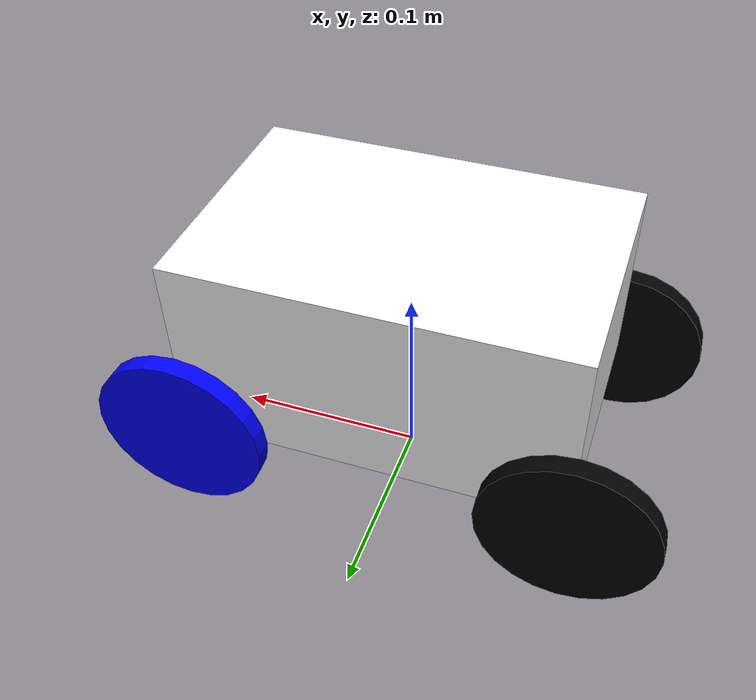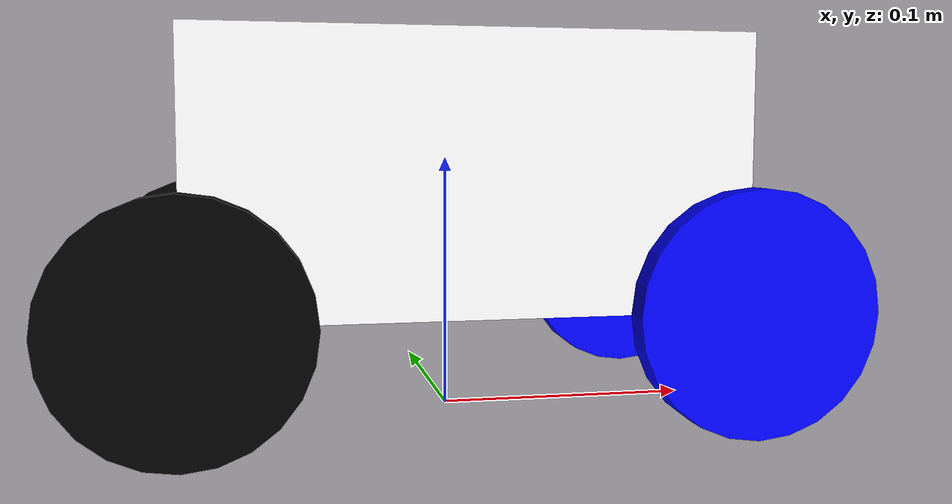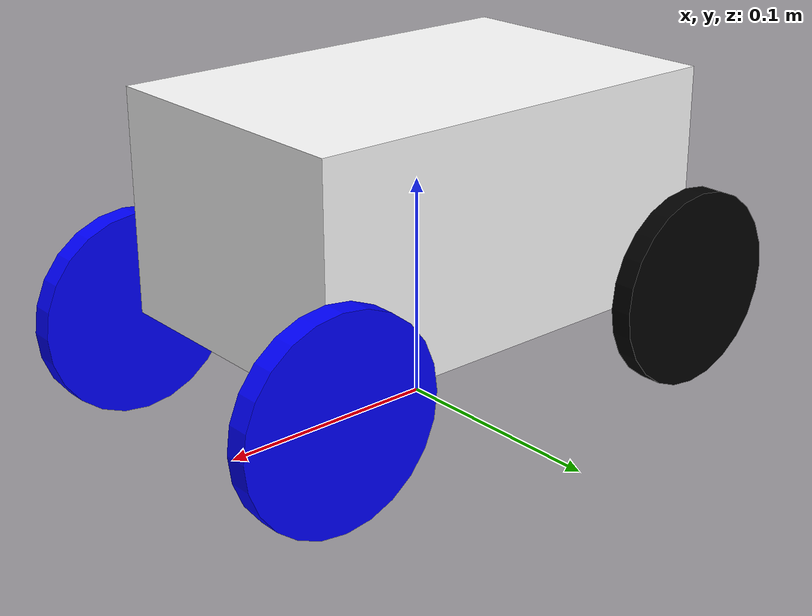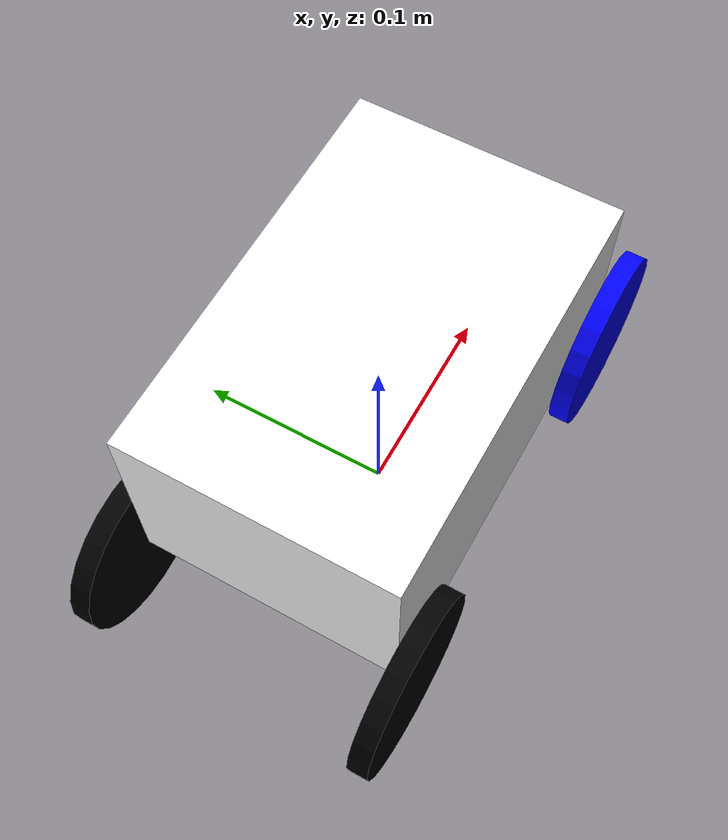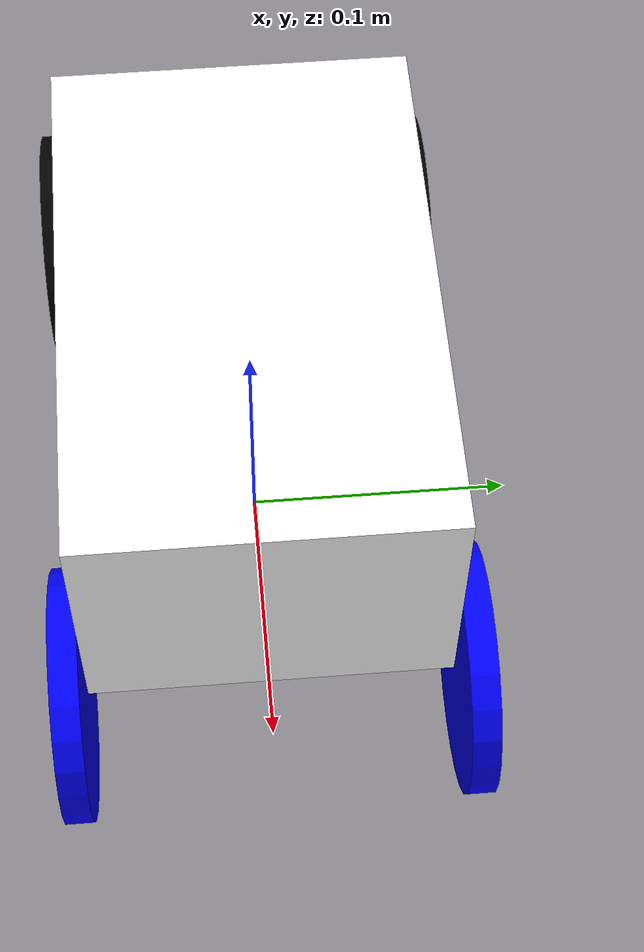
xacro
<?xml version="1.0"?>
<robot xmlns:xacro="http://www.ros.org/wiki/xacro" name="fake-limo">

    <!-- Import the inertial macros -->
    <xacro:include filename="inertial_macros.xacro"/>

    <!-- COLOR NAME  -->
    <material name="white">
        <color rgba="1 1 1 1" />
    </material>
    <material name="black">
        <color rgba="0 0 0 1"/>
    </material>
     <material name="blue">
        <color rgba="0 0 1 1"/>
    </material>

    <!-- base link -->
    <link name="base_link"/>

    <!-- chassis link -->
    <joint name="chassis_joint" type="fixed">
        <origin xyz="0.0 0.0 0.095" rpy="0.0 0.0 1.57"/>
        <parent link="base_link"/>
        <child link="chassis"/>
    </joint>

    <link name="chassis">
        <visual name="">
            <origin xyz="0.0 0.0 0.0" rpy="0.0 0.0 0.0"/>
            <geometry>
                <box size="0.13 0.20 0.1"/>
            </geometry>
            <material name="white"/>
        </visual>
        <collision>
            <origin xyz="0.0 0.0 0.0" rpy="0.0 0.0 0.0"/>
            <geometry>
                <box size="0.13 0.20 0.1"/>
            </geometry>
        </collision>
        <xacro:inertial_box mass="3.0" x="0.13" y="0.2" z="0.1">
            <origin xyz="0.0 0.0 0.0" rpy="0 0 0"/>
        </xacro:inertial_box>
    </link>

    <gazebo reference="chassis">
        <material>Gazebo/White</material>
    </gazebo>

    <!-- front left wheel -->
    <joint name="front_left_wheel_joint" type="revolute">
        <origin xyz="0.10 0.07 0.045" rpy="0.0 0.0 0.0"/>
        <parent link="base_link"/>
        <child link="front_left_wheel_joint_link"/>
        <axis xyz="0.0 0.0 1.0"/>
        <limit lower="-0.7854" upper="0.7854" effort="0.0" velocity="0.0"/>
    </joint>

    <link name="front_left_wheel_joint_link">
    </link>

    <joint name="front_left_wheel" type="continuous">
        <origin xyz="0.0 0.0 0.0" rpy="-1.57 0.0 0.0"/>
        <parent link="front_left_wheel_joint_link"/>
        <child link="front_left_wheel_link"/>
        <axis xyz="0.0 0.0 1.0"/>
    </joint>

    <link name="front_left_wheel_link">
        <visual name="">
            <origin xyz="0.0 0.0 0.0" rpy="0.0 0.0 0.0"/>
            <geometry>
                <cylinder radius="0.045" length="0.01"/>
            </geometry>
            <material name="blue"/>
        </visual>
        <collision>
            <origin xyz="0.0 0.0 0.0" rpy="0.0 0.0 0.0"/>
            <geometry>
                 <cylinder radius="0.045" length="0.01"/>
            </geometry>
        </collision>
        <xacro:inertial_cylinder mass="0.1" length="0.01" radius="0.045">
            <origin xyz="0 0 0" rpy="0 0 0"/>
        </xacro:inertial_cylinder>
    </link>

    <gazebo reference="front_left_wheel_link">
        <material>Gazebo/Blue</material>
    </gazebo>

    <!-- front right wheel -->
    <joint name="front_right_wheel_joint" type="revolute">
        <origin xyz="0.10 -0.07 0.045" rpy="0.0 0.0 0.0"/>
        <parent link="base_link"/>
        <child link="front_right_wheel_joint_link"/>
        <axis xyz="0.0 0.0 1.0"/>
        <limit lower="-0.7854" upper="0.7854" effort="0.0" velocity="0.0"/>
    </joint>

    <link name="front_right_wheel_joint_link">
    </link>

    <joint name="front_right_wheel" type="continuous">
        <origin xyz="0.0 0.0 0.0" rpy="-1.57 0.0 0.0"/>
        <parent link="front_right_wheel_joint_link"/>
        <child link="front_right_wheel_link"/>
        <axis xyz="0.0 0.0 1.0"/>
    </joint>

    <link name="front_right_wheel_link">
        <visual name="">
            <origin xyz="0.0 0.0 0.0" rpy="0.0 0.0 0.0"/>
            <geometry>
                <cylinder radius="0.045" length="0.01"/>
            </geometry>
            <material name="blue"/>
        </visual>
        <collision>
            <origin xyz="0.0 0.0 0.0" rpy="0.0 0.0 0.0"/>
            <geometry>
                 <cylinder radius="0.045" length="0.01"/>
            </geometry>
        </collision>
        <xacro:inertial_cylinder mass="0.1" length="0.01" radius="0.045">
            <origin xyz="0 0 0" rpy="0 0 0"/>
        </xacro:inertial_cylinder>
    </link>

    <gazebo reference="front_right_wheel_link">
        <material>Gazebo/Blue</material>
    </gazebo>

    <!-- back left wheel -->
    <joint name="back_left_wheel" type="continuous">
        <origin xyz="-0.10 0.07 0.045" rpy="-1.57 0.0 0.0"/>
        <parent link="base_link"/>
        <child link="back_left_wheel_link"/>
        <axis xyz="0.0 0.0 1.0"/>
    </joint>

    <link name="back_left_wheel_link">
        <visual name="">
            <origin xyz="0.0 0.0 0.0" rpy="0.0 0.0 0.0"/>
            <geometry>
                <cylinder radius="0.045" length="0.01"/>
            </geometry>
            <material name="black"/>
        </visual>
        <collision>
            <origin xyz="0.0 0.0 0.0" rpy="0.0 0.0 0.0"/>
            <geometry>
                 <cylinder radius="0.045" length="0.01"/>
            </geometry>
        </collision>
        <xacro:inertial_cylinder mass="0.1" length="0.01" radius="0.045">
            <origin xyz="0 0 0" rpy="0 0 0"/>
        </xacro:inertial_cylinder>
    </link>

    <gazebo reference="back_left_wheel_link">
        <material>Gazebo/Black</material>
    </gazebo>

    <!-- back right wheel -->
    <joint name="back_right_wheel" type="continuous">
        <origin xyz="-0.10 -0.07 0.045" rpy="-1.57 0.0 0.0"/>
        <parent link="base_link"/>
        <child link="back_right_wheel_link"/>
        <axis xyz="0.0 0.0 1.0"/>
        <limit lower="0.0" upper="0.0" effort="0.0" velocity="0.0"/>
    </joint>

    <link name="back_right_wheel_link">
        <visual name="">
            <origin xyz="0.0 0.0 0.0" rpy="0.0 0.0 0.0"/>
            <geometry>
                <cylinder radius="0.045" length="0.01"/>
            </geometry>
            <material name="black"/>
        </visual>
        <collision>
            <origin xyz="0.0 0.0 0.0" rpy="0.0 0.0 0.0"/>
            <geometry>
                 <cylinder radius="0.045" length="0.01"/>
            </geometry>
        </collision>
        <xacro:inertial_cylinder mass="0.1" length="0.01" radius="0.045">
            <origin xyz="0 0 0" rpy="0 0 0"/>
        </xacro:inertial_cylinder>
    </link>

    <gazebo reference="back_left_wheel_link">
        <material>Gazebo/Black</material>
    </gazebo>

    <!-- Gazebo specific elements -->
    <gazebo>
        <plugin name="gazebo_ros_control" filename="libgazebo_ros_control.so"/>
    </gazebo>
</robot>
